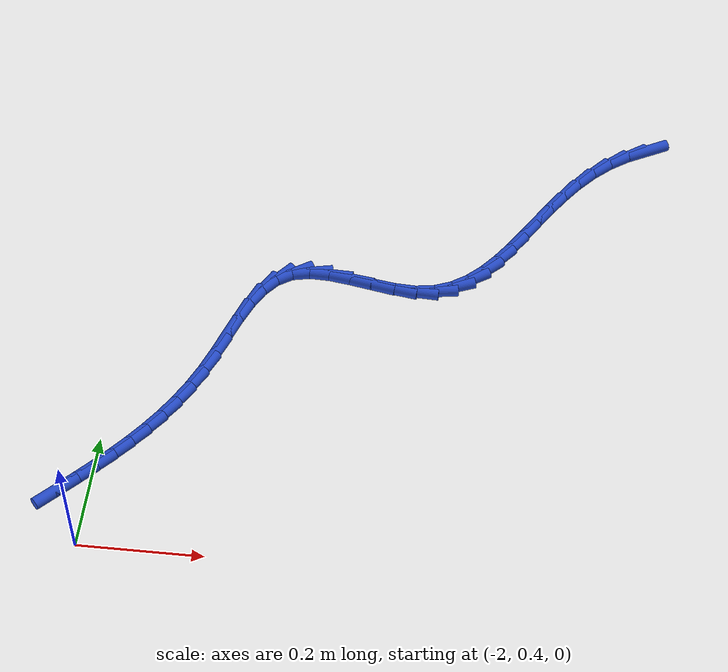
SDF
<sdf version="1.6">
 <world name="default">
  <model name="ground_plane">
   <static>1</static>
   <link name="link">
    <collision name="collision">
     <geometry><plane><normal>0 0 1</normal><size>100 100</size></plane></geometry>
     <surface><friction><ode><mu>100</mu><mu2>50</mu2></ode></friction></surface>
    </collision>
    <visual name="visual">
     <cast_shadows>0</cast_shadows>
     <geometry><plane><normal>0 0 1</normal><size>100 100</size></plane></geometry>
     <material>
      <script><uri>file://media/materials/scripts/gazebo.material</uri><name>Gazebo/WhiteGlow</name></script>
     </material>
    </visual>
   </link>
  </model>
  <model name="line">
   <link name="link_53">
    <pose>-1.1445597932551268 1.3288736112866963 0.01 0 1.57 0.48675943279520245</pose>
    <collision name="collision">
     <geometry><cylinder><radius>0.01</radius><length>0.08</length></cylinder></geometry>
    </collision>
    <visual name="visual">
     <material>
      <script><name>Gazebo/Blue</name><uri>file://media/materials/scripts/gazebo.material</uri></script>
     </material>
     <geometry><cylinder><radius>0.01</radius><length>0.08</length></cylinder></geometry>
    </visual>
   </link>
   <link name="link_54">
    <pose>-1.1793750007194317 1.3104482616792474 0.01 0 1.57 0.6143458513261607</pose>
    <collision name="collision">
     <geometry><cylinder><radius>0.01</radius><length>0.08</length></cylinder></geometry>
    </collision>
    <visual name="visual">
     <material>
      <script><name>Gazebo/Blue</name><uri>file://media/materials/scripts/gazebo.material</uri></script>
     </material>
     <geometry><cylinder><radius>0.01</radius><length>0.08</length></cylinder></geometry>
    </visual>
   </link>
   <link name="link_55">
    <pose>-1.211624640927197 1.2876991282170782 0.01 0 1.57 0.7431959846560838</pose>
    <collision name="collision">
     <geometry><cylinder><radius>0.01</radius><length>0.08</length></cylinder></geometry>
    </collision>
    <visual name="visual">
     <material>
      <script><name>Gazebo/Blue</name><uri>file://media/materials/scripts/gazebo.material</uri></script>
     </material>
     <geometry><cylinder><radius>0.01</radius><length>0.08</length></cylinder></geometry>
    </visual>
   </link>
   <link name="link_56">
    <pose>-1.2407058350665834 1.260974462142331 0.01 0 1.57 0.8505720708952734</pose>
    <collision name="collision">
     <geometry><cylinder><radius>0.01</radius><length>0.08</length></cylinder></geometry>
    </collision>
    <visual name="visual">
     <material>
      <script><name>Gazebo/Blue</name><uri>file://media/materials/scripts/gazebo.material</uri></script>
     </material>
     <geometry><cylinder><radius>0.01</radius><length>0.08</length></cylinder></geometry>
    </visual>
   </link>
   <link name="link_57">
    <pose>-1.266944638592874 1.2310714902477464 0.01 0 1.57 0.9305975996019696</pose>
    <collision name="collision">
     <geometry><cylinder><radius>0.01</radius><length>0.08</length></cylinder></geometry>
    </collision>
    <visual name="visual">
     <material>
      <script><name>Gazebo/Blue</name><uri>file://media/materials/scripts/gazebo.material</uri></script>
     </material>
     <geometry><cylinder><radius>0.01</radius><length>0.08</length></cylinder></geometry>
    </visual>
   </link>
   <link name="link_58">
    <pose>-1.2909056326277843 1.1989027243319164 0.01 0 1.57 0.9848673115763239</pose>
    <collision name="collision">
     <geometry><cylinder><radius>0.01</radius><length>0.08</length></cylinder></geometry>
    </collision>
    <visual name="visual">
     <material>
      <script><name>Gazebo/Blue</name><uri>file://media/materials/scripts/gazebo.material</uri></script>
     </material>
     <geometry><cylinder><radius>0.01</radius><length>0.08</length></cylinder></geometry>
    </visual>
   </link>
   <link name="link_59">
    <pose>-1.313153398457429 1.165380676272889 0.01 0 1.57 1.0149041770785605</pose>
    <collision name="collision">
     <geometry><cylinder><radius>0.01</radius><length>0.08</length></cylinder></geometry>
    </collision>
    <visual name="visual">
     <material>
      <script><name>Gazebo/Blue</name><uri>file://media/materials/scripts/gazebo.material</uri></script>
     </material>
     <geometry><cylinder><radius>0.01</radius><length>0.08</length></cylinder></geometry>
    </visual>
   </link>
   <link name="link_60">
    <pose>-1.3342525173679227 1.1314178579487144 0.01 0 1.57 1.0211979084830909</pose>
    <collision name="collision">
     <geometry><cylinder><radius>0.01</radius><length>0.08</length></cylinder></geometry>
    </collision>
    <visual name="visual">
     <material>
      <script><name>Gazebo/Blue</name><uri>file://media/materials/scripts/gazebo.material</uri></script>
     </material>
     <geometry><cylinder><radius>0.01</radius><length>0.08</length></cylinder></geometry>
    </visual>
   </link>
   <link name="link_61">
    <pose>-1.3547675706453786 1.0979267812374394 0.01 0 1.57 1.0026506113990354</pose>
    <collision name="collision">
     <geometry><cylinder><radius>0.01</radius><length>0.08</length></cylinder></geometry>
    </collision>
    <visual name="visual">
     <material>
      <script><name>Gazebo/Blue</name><uri>file://media/materials/scripts/gazebo.material</uri></script>
     </material>
     <geometry><cylinder><radius>0.01</radius><length>0.08</length></cylinder></geometry>
    </visual>
   </link>
   <link name="link_62">
    <pose>-1.3752631395759103 1.0658199580171137 0.01 0 1.57 0.9561720631617506</pose>
    <collision name="collision">
     <geometry><cylinder><radius>0.01</radius><length>0.08</length></cylinder></geometry>
    </collision>
    <visual name="visual">
     <material>
      <script><name>Gazebo/Blue</name><uri>file://media/materials/scripts/gazebo.material</uri></script>
     </material>
     <geometry><cylinder><radius>0.01</radius><length>0.08</length></cylinder></geometry>
    </visual>
   </link>
   <link name="link_63">
    <pose>-1.3963038054456336 1.0360099001657859 0.01 0 1.57 0.8764347328031592</pose>
    <collision name="collision">
     <geometry><cylinder><radius>0.01</radius><length>0.08</length></cylinder></geometry>
    </collision>
    <visual name="visual">
     <material>
      <script><name>Gazebo/Blue</name><uri>file://media/materials/scripts/gazebo.material</uri></script>
     </material>
     <geometry><cylinder><radius>0.01</radius><length>0.08</length></cylinder></geometry>
    </visual>
   </link>
   <link name="link_64">
    <pose>-1.418454149540661 1.009409119561505 0.01 0 1.57 0.7563456995996365</pose>
    <collision name="collision">
     <geometry><cylinder><radius>0.01</radius><length>0.08</length></cylinder></geometry>
    </collision>
    <visual name="visual">
     <material>
      <script><name>Gazebo/Blue</name><uri>file://media/materials/scripts/gazebo.material</uri></script>
     </material>
     <geometry><cylinder><radius>0.01</radius><length>0.08</length></cylinder></geometry>
    </visual>
   </link>
   <link name="link_65">
    <pose>-1.4422787531471073 0.9869301280823193 0.01 0 1.57 0.589834783526708</pose>
    <collision name="collision">
     <geometry><cylinder><radius>0.01</radius><length>0.08</length></cylinder></geometry>
    </collision>
    <visual name="visual">
     <material>
      <script><name>Gazebo/Blue</name><uri>file://media/materials/scripts/gazebo.material</uri></script>
     </material>
     <geometry><cylinder><radius>0.01</radius><length>0.08</length></cylinder></geometry>
    </visual>
   </link>
   <link name="link_66">
    <pose>-1.4683421975510869 0.969485437606277 0.01 0 1.57 0.37904612073650895</pose>
    <collision name="collision">
     <geometry><cylinder><radius>0.01</radius><length>0.08</length></cylinder></geometry>
    </collision>
    <visual name="visual">
     <material>
      <script><name>Gazebo/Blue</name><uri>file://media/materials/scripts/gazebo.material</uri></script>
     </material>
     <geometry><cylinder><radius>0.01</radius><length>0.08</length></cylinder></geometry>
    </visual>
   </link>
   <link name="link_67">
    <pose>-1.497209064038713 0.957987560011428 0.01 0 1.57 0.1429892985234766</pose>
    <collision name="collision">
     <geometry><cylinder><radius>0.01</radius><length>0.08</length></cylinder></geometry>
    </collision>
    <visual name="visual">
     <material>
      <script><name>Gazebo/Blue</name><uri>file://media/materials/scripts/gazebo.material</uri></script>
     </material>
     <geometry><cylinder><radius>0.01</radius><length>0.08</length></cylinder></geometry>
    </visual>
   </link>
   <link name="link_68">
    <pose>-1.5294427304183196 0.9533468193709889 0.01 0 1.57 -0.06030472697664801</pose>
    <collision name="collision">
     <geometry><cylinder><radius>0.01</radius><length>0.08</length></cylinder></geometry>
    </collision>
    <visual name="visual">
     <material>
      <script><name>Gazebo/Blue</name><uri>file://media/materials/scripts/gazebo.material</uri></script>
     </material>
     <geometry><cylinder><radius>0.01</radius><length>0.08</length></cylinder></geometry>
    </visual>
   </link>
   <link name="link_69">
    <pose>-1.5650698978936475 0.9554979142112118 0.01 0 1.57 -0.16752774024930872</pose>
    <collision name="collision">
     <geometry><cylinder><radius>0.01</radius><length>0.08</length></cylinder></geometry>
    </collision>
    <visual name="visual">
     <material>
      <script><name>Gazebo/Blue</name><uri>file://media/materials/scripts/gazebo.material</uri></script>
     </material>
     <geometry><cylinder><radius>0.01</radius><length>0.08</length></cylinder></geometry>
    </visual>
   </link>
   <link name="link_70">
    <pose>-1.6027379409287648 0.9618680620291291 0.01 0 1.57 -0.1971836008499583</pose>
    <collision name="collision">
     <geometry><cylinder><radius>0.01</radius><length>0.08</length></cylinder></geometry>
    </collision>
    <visual name="visual">
     <material>
      <script><name>Gazebo/Blue</name><uri>file://media/materials/scripts/gazebo.material</uri></script>
     </material>
     <geometry><cylinder><radius>0.01</radius><length>0.08</length></cylinder></geometry>
    </visual>
   </link>
   <link name="link_71">
    <pose>-1.6408757001819922 0.9694872072490579 0.01 0 1.57 -0.1579253116276249</pose>
    <collision name="collision">
     <geometry><cylinder><radius>0.01</radius><length>0.08</length></cylinder></geometry>
    </collision>
    <visual name="visual">
     <material>
      <script><name>Gazebo/Blue</name><uri>file://media/materials/scripts/gazebo.material</uri></script>
     </material>
     <geometry><cylinder><radius>0.01</radius><length>0.08</length></cylinder></geometry>
    </visual>
   </link>
   <link name="link_72">
    <pose>-1.677912016311653 0.9753852942953162 0.01 0 1.57 -0.03510904975460567</pose>
    <collision name="collision">
     <geometry><cylinder><radius>0.01</radius><length>0.08</length></cylinder></geometry>
    </collision>
    <visual name="visual">
     <material>
      <script><name>Gazebo/Blue</name><uri>file://media/materials/scripts/gazebo.material</uri></script>
     </material>
     <geometry><cylinder><radius>0.01</radius><length>0.08</length></cylinder></geometry>
    </visual>
   </link>
   <link name="link_73">
    <pose>-1.712275729976069 0.9765922675922217 0.01 0 1.57 0.21108877660209982</pose>
    <collision name="collision">
     <geometry><cylinder><radius>0.01</radius><length>0.08</length></cylinder></geometry>
    </collision>
    <visual name="visual">
     <material>
      <script><name>Gazebo/Blue</name><uri>file://media/materials/scripts/gazebo.material</uri></script>
     </material>
     <geometry><cylinder><radius>0.01</radius><length>0.08</length></cylinder></geometry>
    </visual>
   </link>
   <link name="link_74">
    <pose>-1.7423957131861794 0.9701381290230485 0.01 0 1.57 0.577225130400253</pose>
    <collision name="collision">
     <geometry><cylinder><radius>0.01</radius><length>0.08</length></cylinder></geometry>
    </collision>
    <visual name="visual">
     <material>
      <script><name>Gazebo/Blue</name><uri>file://media/materials/scripts/gazebo.material</uri></script>
     </material>
     <geometry><cylinder><radius>0.01</radius><length>0.08</length></cylinder></geometry>
    </visual>
   </link>
   <link name="link_75">
    <pose>-1.7672071092908515 0.9539807080709972 0.01 0 1.57 0.8830605279883726</pose>
    <collision name="collision">
     <geometry><cylinder><radius>0.01</radius><length>0.08</length></cylinder></geometry>
    </collision>
    <visual name="visual">
     <material>
      <script><name>Gazebo/Blue</name><uri>file://media/materials/scripts/gazebo.material</uri></script>
     </material>
     <geometry><cylinder><radius>0.01</radius><length>0.08</length></cylinder></geometry>
    </visual>
   </link>
   <link name="link_76">
    <pose>-1.787435161290752 0.9293584936979432 0.01 0 1.57 1.076694311883906</pose>
    <collision name="collision">
     <geometry><cylinder><radius>0.01</radius><length>0.08</length></cylinder></geometry>
    </collision>
    <visual name="visual">
     <material>
      <script><name>Gazebo/Blue</name><uri>file://media/materials/scripts/gazebo.material</uri></script>
     </material>
     <geometry><cylinder><radius>0.01</radius><length>0.08</length></cylinder></geometry>
    </visual>
   </link>
   <link name="link_77">
    <pose>-1.8042005687842397 0.8982347157673781 0.01 0 1.57 1.1864615299186125</pose>
    <collision name="collision">
     <geometry><cylinder><radius>0.01</radius><length>0.08</length></cylinder></geometry>
    </collision>
    <visual name="visual">
     <material>
      <script><name>Gazebo/Blue</name><uri>file://media/materials/scripts/gazebo.material</uri></script>
     </material>
     <geometry><cylinder><radius>0.01</radius><length>0.08</length></cylinder></geometry>
    </visual>
   </link>
   <link name="link_78">
    <pose>-1.818624031369676 0.8625726041427915 0.01 0 1.57 1.2383402552903626</pose>
    <collision name="collision">
     <geometry><cylinder><radius>0.01</radius><length>0.08</length></cylinder></geometry>
    </collision>
    <visual name="visual">
     <material>
      <script><name>Gazebo/Blue</name><uri>file://media/materials/scripts/gazebo.material</uri></script>
     </material>
     <geometry><cylinder><radius>0.01</radius><length>0.08</length></cylinder></geometry>
    </visual>
   </link>
   <link name="link_79">
    <pose>-1.8318262486454187 0.8243353886876748 0.01 0 1.57 1.24552917293921</pose>
    <collision name="collision">
     <geometry><cylinder><radius>0.01</radius><length>0.08</length></cylinder></geometry>
    </collision>
    <visual name="visual">
     <material>
      <script><name>Gazebo/Blue</name><uri>file://media/materials/scripts/gazebo.material</uri></script>
     </material>
     <geometry><cylinder><radius>0.01</radius><length>0.08</length></cylinder></geometry>
    </visual>
   </link>
   <link name="link_80">
    <pose>-1.8449279202098283 0.7854862992655179 0.01 0 1.57 1.2108417574941361</pose>
    <collision name="collision">
     <geometry><cylinder><radius>0.01</radius><length>0.08</length></cylinder></geometry>
    </collision>
    <visual name="visual">
     <material>
      <script><name>Gazebo/Blue</name><uri>file://media/materials/scripts/gazebo.material</uri></script>
     </material>
     <geometry><cylinder><radius>0.01</radius><length>0.08</length></cylinder></geometry>
    </visual>
   </link>
   <link name="link_81">
    <pose>-1.8590440778123165 0.7479783395264025 0.01 0 1.57 1.1466663933793373</pose>
    <collision name="collision">
     <geometry><cylinder><radius>0.01</radius><length>0.08</length></cylinder></geometry>
    </collision>
    <visual name="visual">
     <material>
      <script><name>Gazebo/Blue</name><uri>file://media/materials/scripts/gazebo.material</uri></script>
     </material>
     <geometry><cylinder><radius>0.01</radius><length>0.08</length></cylinder></geometry>
    </visual>
   </link>
   <link name="link_82">
    <pose>-1.8748505988281268 0.7129721690774159 0.01 0 1.57 1.0809651333365453</pose>
    <collision name="collision">
     <geometry><cylinder><radius>0.01</radius><length>0.08</length></cylinder></geometry>
    </collision>
    <visual name="visual">
     <material>
      <script><name>Gazebo/Blue</name><uri>file://media/materials/scripts/gazebo.material</uri></script>
     </material>
     <geometry><cylinder><radius>0.01</radius><length>0.08</length></cylinder></geometry>
    </visual>
   </link>
   <link name="link_83">
    <pose>-1.8922786066681083 0.6802847255866363 0.01 0 1.57 1.018498839627627</pose>
    <collision name="collision">
     <geometry><cylinder><radius>0.01</radius><length>0.08</length></cylinder></geometry>
    </collision>
    <visual name="visual">
     <material>
      <script><name>Gazebo/Blue</name><uri>file://media/materials/scripts/gazebo.material</uri></script>
     </material>
     <geometry><cylinder><radius>0.01</radius><length>0.08</length></cylinder></geometry>
    </visual>
   </link>
   <link name="link_84">
    <pose>-1.9111870391027797 0.6496027058194673 0.01 0 1.57 0.9611160336171131</pose>
    <collision name="collision">
     <geometry><cylinder><radius>0.01</radius><length>0.08</length></cylinder></geometry>
    </collision>
    <visual name="visual">
     <material>
      <script><name>Gazebo/Blue</name><uri>file://media/materials/scripts/gazebo.material</uri></script>
     </material>
     <geometry><cylinder><radius>0.01</radius><length>0.08</length></cylinder></geometry>
    </visual>
   </link>
   <link name="link_85">
    <pose>-1.9314348339026592 0.6206128065413111 0.01 0 1.57 0.9104122270428204</pose>
    <collision name="collision">
     <geometry><cylinder><radius>0.01</radius><length>0.08</length></cylinder></geometry>
    </collision>
    <visual name="visual">
     <material>
      <script><name>Gazebo/Blue</name><uri>file://media/materials/scripts/gazebo.material</uri></script>
     </material>
     <geometry><cylinder><radius>0.01</radius><length>0.08</length></cylinder></geometry>
    </visual>
   </link>
   <link name="link_86">
    <pose>-1.9528809288382663 0.5930017245175715 0.01 0 1.57 0.8676246936625847</pose>
    <collision name="collision">
     <geometry><cylinder><radius>0.01</radius><length>0.08</length></cylinder></geometry>
    </collision>
    <visual name="visual">
     <material>
      <script><name>Gazebo/Blue</name><uri>file://media/materials/scripts/gazebo.material</uri></script>
     </material>
     <geometry><cylinder><radius>0.01</radius><length>0.08</length></cylinder></geometry>
    </visual>
   </link>
   <link name="link_87">
    <pose>-1.9753842616801183 0.5664561565136506 0.01 0 1.57 0.8335971478937653</pose>
    <collision name="collision">
     <geometry><cylinder><radius>0.01</radius><length>0.08</length></cylinder></geometry>
    </collision>
    <visual name="visual">
     <material>
      <script><name>Gazebo/Blue</name><uri>file://media/materials/scripts/gazebo.material</uri></script>
     </material>
     <geometry><cylinder><radius>0.01</radius><length>0.08</length></cylinder></geometry>
    </visual>
   </link>
   <link name="link_88">
    <pose>-1.9988037701987351 0.5406627992949523 0.01 0 1.57 0.8088015472191787</pose>
    <collision name="collision">
     <geometry><cylinder><radius>0.01</radius><length>0.08</length></cylinder></geometry>
    </collision>
    <visual name="visual">
     <material>
      <script><name>Gazebo/Blue</name><uri>file://media/materials/scripts/gazebo.material</uri></script>
     </material>
     <geometry><cylinder><radius>0.01</radius><length>0.08</length></cylinder></geometry>
    </visual>
   </link>
   <link name="link_89">
    <pose>-2.022998392164635 0.5153083496268787 0.01 0 1.57 0.7933874374413358</pose>
    <collision name="collision">
     <geometry><cylinder><radius>0.01</radius><length>0.08</length></cylinder></geometry>
    </collision>
    <visual name="visual">
     <material>
      <script><name>Gazebo/Blue</name><uri>file://media/materials/scripts/gazebo.material</uri></script>
     </material>
     <geometry><cylinder><radius>0.01</radius><length>0.08</length></cylinder></geometry>
    </visual>
   </link>
   <link name="link_90">
    <pose>-2.04782696792189 0.4900798456326765 0.01 0 1.57 0.7862654104075549</pose>
    <collision name="collision">
     <geometry><cylinder><radius>0.01</radius><length>0.08</length></cylinder></geometry>
    </collision>
    <visual name="visual">
     <material>
      <script><name>Gazebo/Blue</name><uri>file://media/materials/scripts/gazebo.material</uri></script>
     </material>
     <geometry><cylinder><radius>0.01</radius><length>0.08</length></cylinder></geometry>
    </visual>
   </link>
  </model>
 </world>
</sdf>
